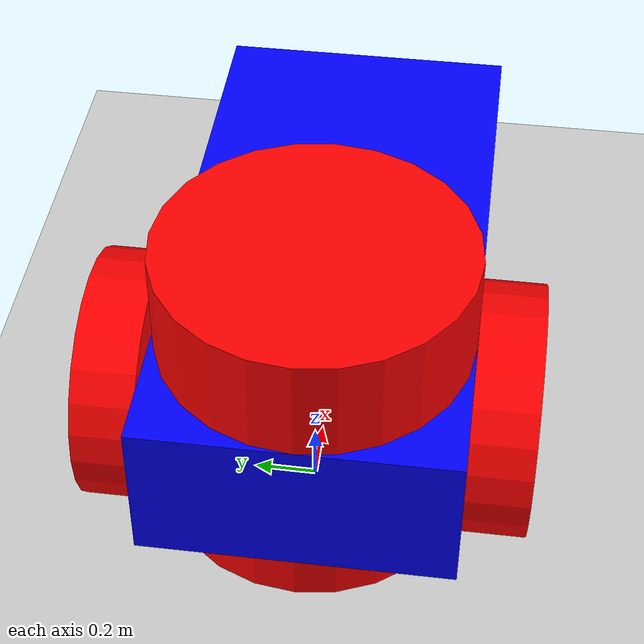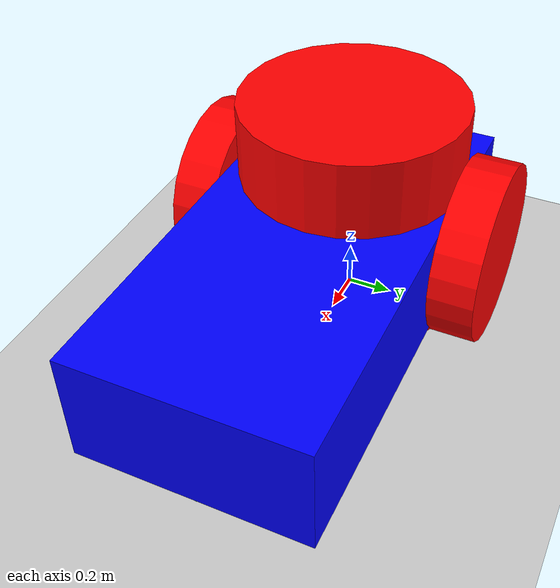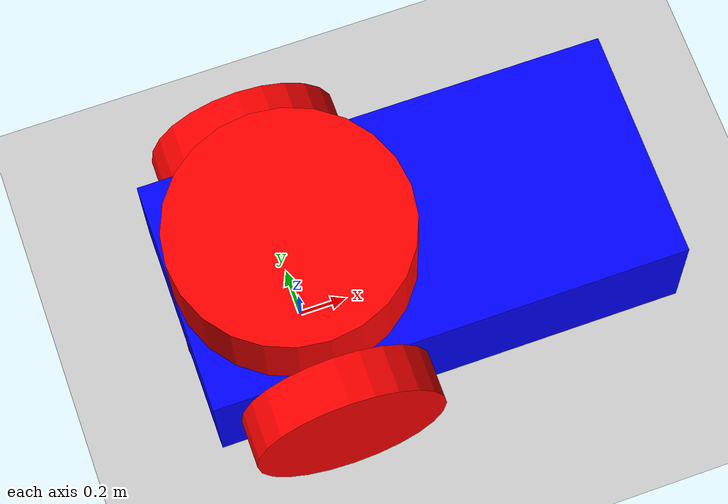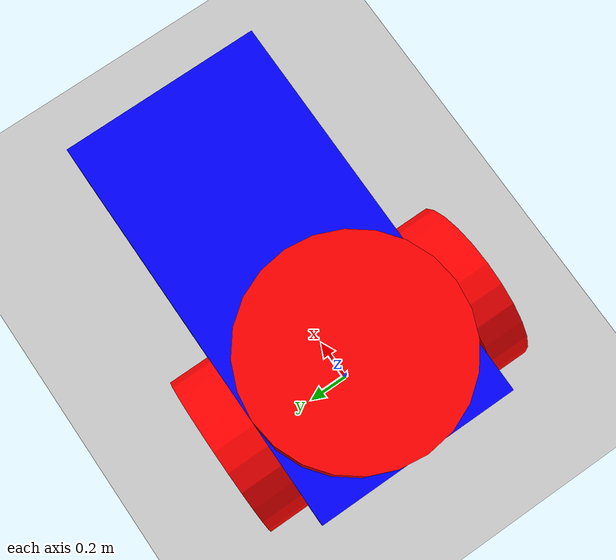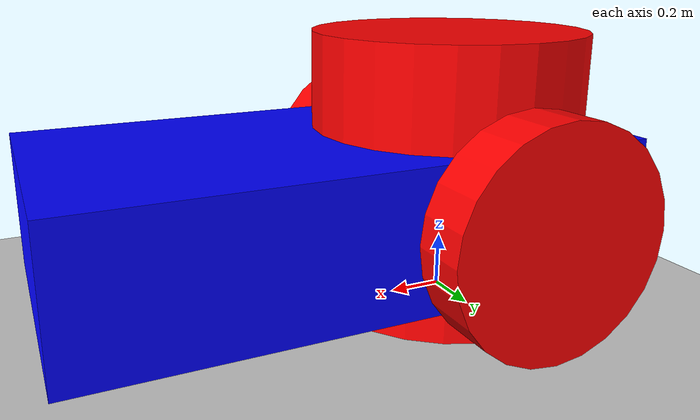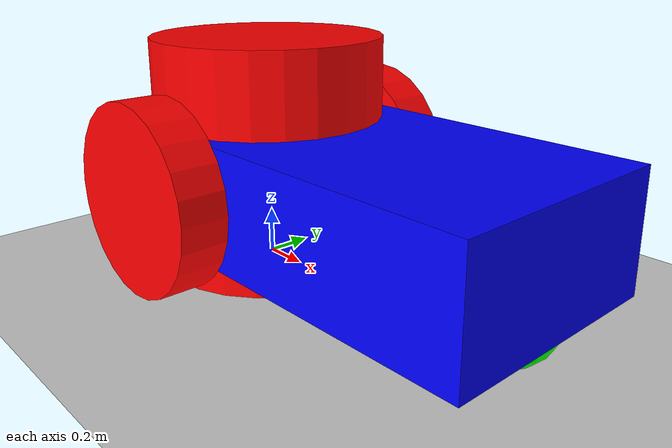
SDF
<?xml version="1.0"?>
<sdf version="1.8">
  <world name="distance_experiment">
    <!-- Physics -->
    <plugin filename="gz-sim-physics-system" name="gz::sim::systems::Physics"></plugin>
    <plugin filename="gz-sim-user-commands-system" name="gz::sim::systems::UserCommands"></plugin>
    <plugin filename="gz-sim-scene-broadcaster-system" name="gz::sim::systems::SceneBroadcaster"></plugin>

    <!-- NS-3 Gazebo World Plugin -->
    <plugin name="ns3_gazebo_world::NS3GazeboWorld" filename="libns3_gazebo_world.so">
      <log_file>distance_experiment.csv</log_file>
    </plugin>

    <!-- Sun -->
    <light type="directional" name="sun">
      <cast_shadows>true</cast_shadows>
      <pose>0 0 10 0 0 0</pose>
      <diffuse>0.8 0.8 0.8 1</diffuse>
      <specular>0.2 0.2 0.2 1</specular>
      <direction>-0.5 0.1 -0.9</direction>
    </light>

    <!-- Ground plane -->
    <model name="ground_plane">
      <static>true</static>
      <link name="link">
        <collision name="collision">
          <geometry>
            <plane>
              <normal>0 0 1</normal>
            </plane>
          </geometry>
        </collision>
        <visual name="visual">
          <geometry>
            <plane>
              <normal>0 0 1</normal>
              <size>200 100</size>
            </plane>
          </geometry>
          <material>
            <ambient>0.8 0.8 0.8 1</ambient>
            <diffuse>0.8 0.8 0.8 1</diffuse>
          </material>
        </visual>
      </link>
    </model>

    <!-- Base Station Marker (visual only) -->
    <model name="base_station">
      <static>true</static>
      <pose>0 0 0.5 0 0 0</pose>
      <link name="marker">
        <visual name="visual">
          <geometry>
            <cylinder>
              <radius>0.5</radius>
              <length>1.0</length>
            </cylinder>
          </geometry>
          <material>
            <ambient>1 0 0 1</ambient>
            <diffuse>1 0 0 1</diffuse>
          </material>
        </visual>
      </link>
    </model>

    <!-- Vehicle (starts at origin) -->
    <model name='vehicle' canonical_link='chassis'>
      <pose relative_to='world'>0 0 0 0 0 0</pose>

      <link name='chassis'>
        <pose relative_to='__model__'>0.5 0 0.4 0 0 0</pose>
        <inertial>
          <mass>1.14395</mass>
          <inertia>
            <ixx>0.126164</ixx>
            <ixy>0</ixy>
            <ixz>0</ixz>
            <iyy>0.416519</iyy>
            <iyz>0</iyz>
            <izz>0.481014</izz>
          </inertia>
        </inertial>
        <visual name='visual'>
          <geometry>
            <box>
              <size>2.0 1.0 0.5</size>
            </box>
          </geometry>
          <material>
            <ambient>0.0 0.0 1.0 1</ambient>
            <diffuse>0.0 0.0 1.0 1</diffuse>
          </material>
        </visual>
        <collision name='collision'>
          <geometry>
            <box>
              <size>2.0 1.0 0.5</size>
            </box>
          </geometry>
        </collision>
      </link>

      <!-- Left wheel -->
      <link name='left_wheel'>
        <pose relative_to="chassis">-0.5 0.6 0 -1.5707 0 0</pose>
        <inertial>
          <mass>2</mass>
          <inertia>
            <ixx>0.145833</ixx>
            <ixy>0</ixy>
            <ixz>0</ixz>
            <iyy>0.145833</iyy>
            <iyz>0</iyz>
            <izz>0.125</izz>
          </inertia>
        </inertial>
        <visual name='visual'>
          <geometry>
            <cylinder>
              <radius>0.4</radius>
              <length>0.2</length>
            </cylinder>
          </geometry>
          <material>
            <ambient>1.0 0.0 0.0 1</ambient>
            <diffuse>1.0 0.0 0.0 1</diffuse>
          </material>
        </visual>
        <collision name='collision'>
          <geometry>
            <cylinder>
              <radius>0.4</radius>
              <length>0.2</length>
            </cylinder>
          </geometry>
        </collision>
      </link>

      <!-- Right wheel -->
      <link name='right_wheel'>
        <pose relative_to="chassis">-0.5 -0.6 0 -1.5707 0 0</pose>
        <inertial>
          <mass>1</mass>
          <inertia>
            <ixx>0.145833</ixx>
            <ixy>0</ixy>
            <ixz>0</ixz>
            <iyy>0.145833</iyy>
            <iyz>0</iyz>
            <izz>0.125</izz>
          </inertia>
        </inertial>
        <visual name='visual'>
          <geometry>
            <cylinder>
              <radius>0.4</radius>
              <length>0.2</length>
            </cylinder>
          </geometry>
          <material>
            <ambient>1.0 0.0 0.0 1</ambient>
            <diffuse>1.0 0.0 0.0 1</diffuse>
          </material>
        </visual>
        <collision name='collision'>
          <geometry>
            <cylinder>
              <radius>0.4</radius>
              <length>0.2</length>
            </cylinder>
          </geometry>
        </collision>
      </link>

      <!-- Caster wheel -->
      <frame name="caster_frame" attached_to='chassis'>
        <pose>0.8 0 -0.2 0 0 0</pose>
      </frame>

      <link name='caster'>
        <pose relative_to='caster_frame'/>
        <inertial>
          <mass>1</mass>
          <inertia>
            <ixx>0.1</ixx>
            <ixy>0</ixy>
            <ixz>0</ixz>
            <iyy>0.1</iyy>
            <iyz>0</iyz>
            <izz>0.1</izz>
          </inertia>
        </inertial>
        <visual name='visual'>
          <geometry>
            <sphere>
              <radius>0.2</radius>
            </sphere>
          </geometry>
          <material>
            <ambient>0.0 1 0.0 1</ambient>
            <diffuse>0.0 1 0.0 1</diffuse>
          </material>
        </visual>
        <collision name='collision'>
          <geometry>
            <sphere>
              <radius>0.2</radius>
            </sphere>
          </geometry>
        </collision>
      </link>

      <!-- Joints -->
      <joint name='left_wheel_joint' type='revolute'>
        <pose relative_to='left_wheel'/>
        <parent>chassis</parent>
        <child>left_wheel</child>
        <axis>
          <xyz expressed_in='__model__'>0 1 0</xyz>
          <limit>
            <lower>-1.79769e+308</lower>
            <upper>1.79769e+308</upper>
          </limit>
        </axis>
      </joint>

      <joint name='right_wheel_joint' type='revolute'>
        <pose relative_to='right_wheel'/>
        <parent>chassis</parent>
        <child>right_wheel</child>
        <axis>
          <xyz expressed_in='__model__'>0 1 0</xyz>
          <limit>
            <lower>-1.79769e+308</lower>
            <upper>1.79769e+308</upper>
          </limit>
        </axis>
      </joint>

      <joint name='caster_wheel' type='ball'>
        <parent>chassis</parent>
        <child>caster</child>
      </joint>

      <!-- Differential drive plugin -->
      <plugin filename="gz-sim-diff-drive-system" name="gz::sim::systems::DiffDrive">
        <left_joint>left_wheel_joint</left_joint>
        <right_joint>right_wheel_joint</right_joint>
        <wheel_separation>1.2</wheel_separation>
        <wheel_radius>0.4</wheel_radius>
        <odom_publish_frequency>10</odom_publish_frequency>
        <topic>cmd_vel</topic>
      </plugin>
    </model>

  </world>
</sdf>
